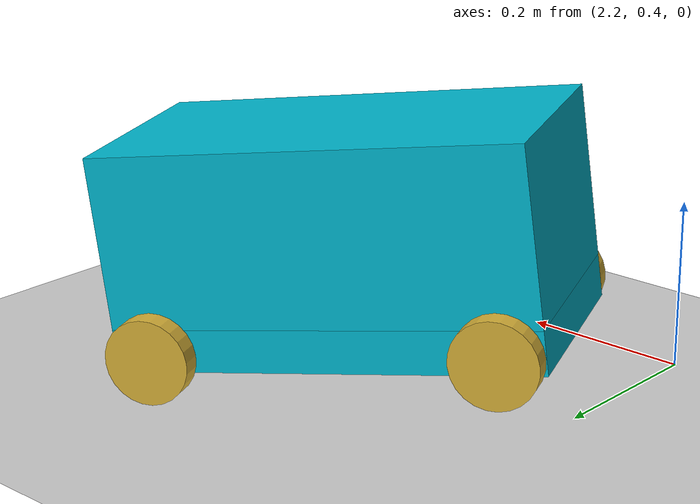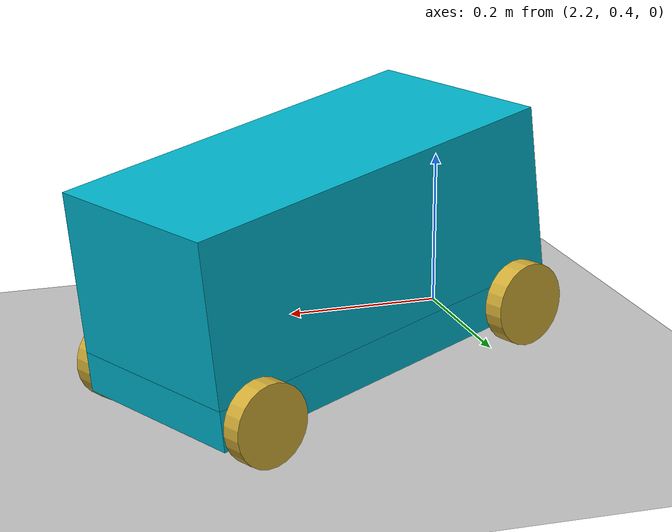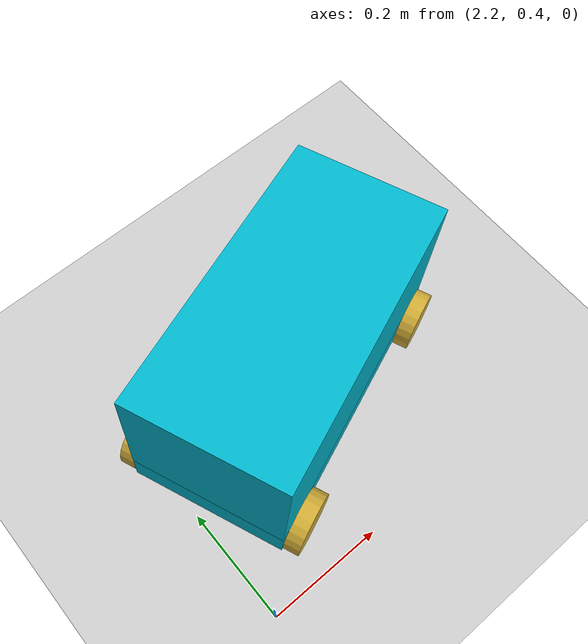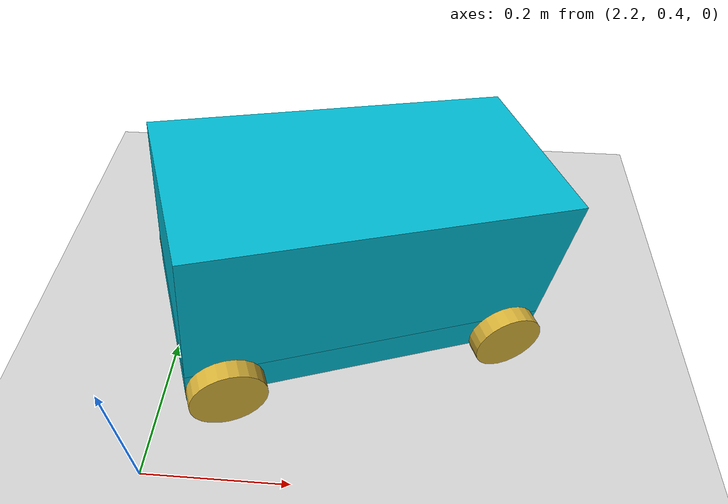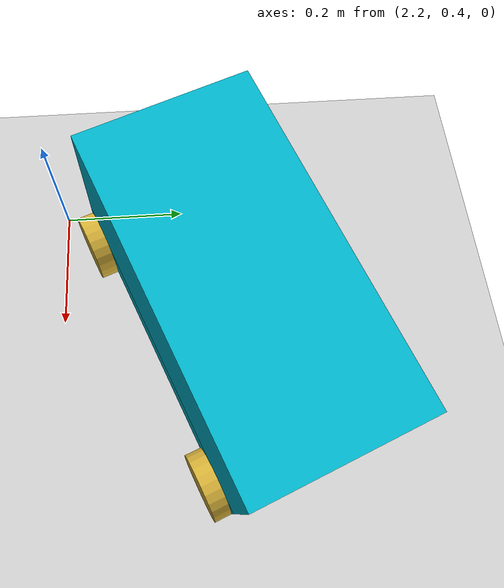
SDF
<sdf version="1.6">
 <world name="default">
  <model name="ground_plane">
   <static>1</static>
   <link name="link">
    <collision name="collision">
     <geometry><plane><normal>0 0 1</normal><size>100 100</size></plane></geometry>
     <surface><friction><ode><mu>100</mu><mu2>50</mu2></ode></friction></surface>
    </collision>
    <visual name="visual">
     <cast_shadows>0</cast_shadows>
     <geometry><plane><normal>0 0 1</normal><size>100 100</size></plane></geometry>
     <material>
      <script><uri>file://media/materials/scripts/gazebo.material</uri><name>Gazebo/Grey</name></script>
     </material>
    </visual>
   </link>
  </model>
  <model name="suv">
   <link name="link_0">
    <pose>0.2 0.139167 -0.029167 0 -0 0</pose>
    <inertial>
     <mass>1</mass>
     <inertia><ixx>0.145833</ixx><ixy>0</ixy><ixz>0</ixz><iyy>0.145833</iyy><iyz>0</iyz><izz>0.125</izz></inertia>
    </inertial>
    <visual name="visual">
     <pose>0 0 0.05 1.5707 -0 0</pose>
     <geometry><cylinder><radius>0.05</radius><length>0.025</length></cylinder></geometry>
     <material>
      <lighting>1</lighting>
      <script><uri>file://media/materials/scripts/gazebo.material</uri><name>Gazebo/Grey</name></script>
      <shader type="pixel"><normal_map>__default__</normal_map></shader>
      <ambient>0.831 0.686 0.216 1</ambient>
      <diffuse>0.831 0.686 0.216 1</diffuse>
      <specular>0.01 0.01 0.01 1</specular>
      <emissive>0 0 0 1</emissive>
     </material>
    </visual>
    <collision name="collision">
     <pose>0 0 0.05 1.5707 -0 0</pose>
     <geometry><cylinder><radius>0.05</radius><length>0.025</length></cylinder></geometry>
     <surface>
      <friction>
       <ode><mu>1</mu><mu2>1</mu2><fdir1>0 0 0</fdir1><slip1>0</slip1><slip2>0</slip2></ode>
       <torsional>
        <coefficient>1</coefficient>
        <patch_radius>0</patch_radius>
        <surface_radius>0</surface_radius>
        <use_patch_radius>1</use_patch_radius>
        <ode><slip>0</slip></ode>
       </torsional>
      </friction>
      <bounce><restitution_coefficient>0</restitution_coefficient><threshold>1e+06</threshold></bounce>
      <contact>
       <collide_without_contact>0</collide_without_contact>
       <collide_without_contact_bitmask>1</collide_without_contact_bitmask>
       <collide_bitmask>1</collide_bitmask>
       <ode>
        <soft_cfm>0</soft_cfm>
        <soft_erp>0.2</soft_erp>
        <kp>1e+13</kp>
        <kd>1</kd>
        <max_vel>0.01</max_vel>
        <min_depth>0</min_depth>
       </ode>
       <bullet>
        <split_impulse>1</split_impulse>
        <split_impulse_penetration_threshold>-0.01</split_impulse_penetration_threshold>
        <soft_cfm>0</soft_cfm>
        <soft_erp>0.2</soft_erp>
        <kp>1e+13</kp>
        <kd>1</kd>
       </bullet>
      </contact>
     </surface>
    </collision>
   </link>
   <link name="link_0_clone">
    <pose>-0.2 0.139167 -0.029167 0 -0 0</pose>
    <inertial>
     <mass>1</mass>
     <inertia><ixx>0.145833</ixx><ixy>0</ixy><ixz>0</ixz><iyy>0.145833</iyy><iyz>0</iyz><izz>0.125</izz></inertia>
    </inertial>
    <visual name="visual">
     <pose>0 0 0.05 1.5707 -0 0</pose>
     <geometry><cylinder><radius>0.05</radius><length>0.025</length></cylinder></geometry>
     <material>
      <lighting>1</lighting>
      <script><uri>file://media/materials/scripts/gazebo.material</uri><name>Gazebo/Grey</name></script>
      <shader type="pixel"><normal_map>__default__</normal_map></shader>
      <ambient>0.831 0.686 0.216 1</ambient>
      <diffuse>0.831 0.686 0.216 1</diffuse>
      <specular>0.01 0.01 0.01 1</specular>
      <emissive>0 0 0 1</emissive>
     </material>
    </visual>
    <collision name="collision">
     <pose>0 0 0.05 1.5707 -0 0</pose>
     <geometry><cylinder><radius>0.05</radius><length>0.025</length></cylinder></geometry>
     <surface>
      <friction>
       <ode><mu>1</mu><mu2>1</mu2><fdir1>0 0 0</fdir1><slip1>0</slip1><slip2>0</slip2></ode>
       <torsional>
        <coefficient>1</coefficient>
        <patch_radius>0</patch_radius>
        <surface_radius>0</surface_radius>
        <use_patch_radius>1</use_patch_radius>
        <ode><slip>0</slip></ode>
       </torsional>
      </friction>
      <bounce><restitution_coefficient>0</restitution_coefficient><threshold>1e+06</threshold></bounce>
      <contact>
       <collide_without_contact>0</collide_without_contact>
       <collide_without_contact_bitmask>1</collide_without_contact_bitmask>
       <collide_bitmask>1</collide_bitmask>
       <ode>
        <soft_cfm>0</soft_cfm>
        <soft_erp>0.2</soft_erp>
        <kp>1e+13</kp>
        <kd>1</kd>
        <max_vel>0.01</max_vel>
        <min_depth>0</min_depth>
       </ode>
       <bullet>
        <split_impulse>1</split_impulse>
        <split_impulse_penetration_threshold>-0.01</split_impulse_penetration_threshold>
        <soft_cfm>0</soft_cfm>
        <soft_erp>0.2</soft_erp>
        <kp>1e+13</kp>
        <kd>1</kd>
       </bullet>
      </contact>
     </surface>
    </collision>
   </link>
   <link name="link_0_clone_0">
    <pose>0.2 -0.138333 -0.029167 0 -0 0</pose>
    <inertial>
     <mass>1</mass>
     <inertia><ixx>0.145833</ixx><ixy>0</ixy><ixz>0</ixz><iyy>0.145833</iyy><iyz>0</iyz><izz>0.125</izz></inertia>
    </inertial>
    <visual name="visual">
     <pose>0 0 0.05 1.5707 -0 0</pose>
     <geometry><cylinder><radius>0.05</radius><length>0.025</length></cylinder></geometry>
     <material>
      <lighting>1</lighting>
      <script><uri>file://media/materials/scripts/gazebo.material</uri><name>Gazebo/Grey</name></script>
      <shader type="pixel"><normal_map>__default__</normal_map></shader>
      <ambient>0.831 0.686 0.216 1</ambient>
      <diffuse>0.831 0.686 0.216 1</diffuse>
      <specular>0.01 0.01 0.01 1</specular>
      <emissive>0 0 0 1</emissive>
     </material>
    </visual>
    <collision name="collision">
     <pose>0 0 0.05 1.5707 -0 0</pose>
     <geometry><cylinder><radius>0.05</radius><length>0.025</length></cylinder></geometry>
     <surface>
      <friction>
       <ode><mu>1</mu><mu2>1</mu2><fdir1>0 0 0</fdir1><slip1>0</slip1><slip2>0</slip2></ode>
       <torsional>
        <coefficient>1</coefficient>
        <patch_radius>0</patch_radius>
        <surface_radius>0</surface_radius>
        <use_patch_radius>1</use_patch_radius>
        <ode><slip>0</slip></ode>
       </torsional>
      </friction>
      <bounce><restitution_coefficient>0</restitution_coefficient><threshold>1e+06</threshold></bounce>
      <contact>
       <collide_without_contact>0</collide_without_contact>
       <collide_without_contact_bitmask>1</collide_without_contact_bitmask>
       <collide_bitmask>1</collide_bitmask>
       <ode>
        <soft_cfm>0</soft_cfm>
        <soft_erp>0.2</soft_erp>
        <kp>1e+13</kp>
        <kd>1</kd>
        <max_vel>0.01</max_vel>
        <min_depth>0</min_depth>
       </ode>
       <bullet>
        <split_impulse>1</split_impulse>
        <split_impulse_penetration_threshold>-0.01</split_impulse_penetration_threshold>
        <soft_cfm>0</soft_cfm>
        <soft_erp>0.2</soft_erp>
        <kp>1e+13</kp>
        <kd>1</kd>
       </bullet>
      </contact>
     </surface>
    </collision>
   </link>
   <link name="link_0_clone_1">
    <pose>-0.2 -0.138333 -0.029167 0 -0 0</pose>
    <inertial>
     <mass>1</mass>
     <inertia><ixx>0.145833</ixx><ixy>0</ixy><ixz>0</ixz><iyy>0.145833</iyy><iyz>0</iyz><izz>0.125</izz></inertia>
    </inertial>
    <visual name="visual">
     <pose>0 0 0.05 1.5707 -0 0</pose>
     <geometry><cylinder><radius>0.05</radius><length>0.025</length></cylinder></geometry>
     <material>
      <lighting>1</lighting>
      <script><uri>file://media/materials/scripts/gazebo.material</uri><name>Gazebo/Grey</name></script>
      <shader type="pixel"><normal_map>__default__</normal_map></shader>
      <ambient>0.831 0.686 0.216 1</ambient>
      <diffuse>0.831 0.686 0.216 1</diffuse>
      <specular>0.01 0.01 0.01 1</specular>
      <emissive>0 0 0 1</emissive>
     </material>
    </visual>
    <collision name="collision">
     <pose>0 0 0.05 1.5707 -0 0</pose>
     <geometry><cylinder><radius>0.05</radius><length>0.025</length></cylinder></geometry>
     <surface>
      <friction>
       <ode><mu>1</mu><mu2>1</mu2><fdir1>0 0 0</fdir1><slip1>0</slip1><slip2>0</slip2></ode>
       <torsional>
        <coefficient>1</coefficient>
        <patch_radius>0</patch_radius>
        <surface_radius>0</surface_radius>
        <use_patch_radius>1</use_patch_radius>
        <ode><slip>0</slip></ode>
       </torsional>
      </friction>
      <bounce><restitution_coefficient>0</restitution_coefficient><threshold>1e+06</threshold></bounce>
      <contact>
       <collide_without_contact>0</collide_without_contact>
       <collide_without_contact_bitmask>1</collide_without_contact_bitmask>
       <collide_bitmask>1</collide_bitmask>
       <ode>
        <soft_cfm>0</soft_cfm>
        <soft_erp>0.2</soft_erp>
        <kp>1e+13</kp>
        <kd>1</kd>
        <max_vel>0.01</max_vel>
        <min_depth>0</min_depth>
       </ode>
       <bullet>
        <split_impulse>1</split_impulse>
        <split_impulse_penetration_threshold>-0.01</split_impulse_penetration_threshold>
        <soft_cfm>0</soft_cfm>
        <soft_erp>0.2</soft_erp>
        <kp>1e+13</kp>
        <kd>1</kd>
       </bullet>
      </contact>
     </surface>
    </collision>
   </link>
   <link name="link_2">
    <pose>0 -0 0.025 0 -0 0</pose>
    <inertial>
     <mass>1</mass>
     <inertia>
      <ixx>0.166667</ixx>
      <ixy>0</ixy>
      <ixz>0</ixz>
      <iyy>0.166667</iyy>
      <iyz>0</iyz>
      <izz>0.166667</izz>
     </inertia>
    </inertial>
    <visual name="visual">
     <geometry><box><size>0.5 0.25 0.05</size></box></geometry>
     <material>
      <lighting>1</lighting>
      <script><uri>file://media/materials/scripts/gazebo.material</uri><name>Gazebo/Grey</name></script>
      <shader type="pixel"><normal_map>__default__</normal_map></shader>
      <ambient>0 0.72 0.81 1</ambient>
      <diffuse>0 0.72 0.81 1</diffuse>
      <specular>0.01 0.01 0.01 1</specular>
      <emissive>0 0 0 1</emissive>
     </material>
    </visual>
    <collision name="collision">
     <geometry><box><size>0.5 0.25 0.05</size></box></geometry>
     <surface>
      <friction>
       <ode><mu>1</mu><mu2>1</mu2><fdir1>0 0 0</fdir1><slip1>0</slip1><slip2>0</slip2></ode>
       <torsional>
        <coefficient>1</coefficient>
        <patch_radius>0</patch_radius>
        <surface_radius>0</surface_radius>
        <use_patch_radius>1</use_patch_radius>
        <ode><slip>0</slip></ode>
       </torsional>
      </friction>
      <bounce><restitution_coefficient>0</restitution_coefficient><threshold>1e+06</threshold></bounce>
      <contact>
       <collide_without_contact>0</collide_without_contact>
       <collide_without_contact_bitmask>1</collide_without_contact_bitmask>
       <collide_bitmask>1</collide_bitmask>
       <ode>
        <soft_cfm>0</soft_cfm>
        <soft_erp>0.2</soft_erp>
        <kp>1e+13</kp>
        <kd>1</kd>
        <max_vel>0.01</max_vel>
        <min_depth>0</min_depth>
       </ode>
       <bullet>
        <split_impulse>1</split_impulse>
        <split_impulse_penetration_threshold>-0.01</split_impulse_penetration_threshold>
        <soft_cfm>0</soft_cfm>
        <soft_erp>0.2</soft_erp>
        <kp>1e+13</kp>
        <kd>1</kd>
       </bullet>
      </contact>
     </surface>
    </collision>
   </link>
   <link name="link_7">
    <pose>0 -0 0.15 0 -0 0</pose>
    <inertial>
     <mass>1</mass>
     <inertia>
      <ixx>0.166667</ixx>
      <ixy>0</ixy>
      <ixz>0</ixz>
      <iyy>0.166667</iyy>
      <iyz>0</iyz>
      <izz>0.166667</izz>
     </inertia>
    </inertial>
    <visual name="visual">
     <geometry><box><size>0.5 0.25 0.2</size></box></geometry>
     <material>
      <lighting>1</lighting>
      <script><uri>file://media/materials/scripts/gazebo.material</uri><name>Gazebo/Grey</name></script>
      <shader type="pixel"><normal_map>__default__</normal_map></shader>
      <ambient>0 0.72 0.81 1</ambient>
      <diffuse>0 0.72 0.81 1</diffuse>
      <specular>0.01 0.01 0.01 1</specular>
      <emissive>0 0 0 1</emissive>
     </material>
    </visual>
    <collision name="collision">
     <geometry><box><size>0.5 0.25 0.2</size></box></geometry>
     <surface>
      <friction>
       <ode><mu>1</mu><mu2>1</mu2><fdir1>0 0 0</fdir1><slip1>0</slip1><slip2>0</slip2></ode>
       <torsional>
        <coefficient>1</coefficient>
        <patch_radius>0</patch_radius>
        <surface_radius>0</surface_radius>
        <use_patch_radius>1</use_patch_radius>
        <ode><slip>0</slip></ode>
       </torsional>
      </friction>
      <bounce><restitution_coefficient>0</restitution_coefficient><threshold>1e+06</threshold></bounce>
      <contact>
       <collide_without_contact>0</collide_without_contact>
       <collide_without_contact_bitmask>1</collide_without_contact_bitmask>
       <collide_bitmask>1</collide_bitmask>
       <ode>
        <soft_cfm>0</soft_cfm>
        <soft_erp>0.2</soft_erp>
        <kp>1e+13</kp>
        <kd>1</kd>
        <max_vel>0.01</max_vel>
        <min_depth>0</min_depth>
       </ode>
       <bullet>
        <split_impulse>1</split_impulse>
        <split_impulse_penetration_threshold>-0.01</split_impulse_penetration_threshold>
        <soft_cfm>0</soft_cfm>
        <soft_erp>0.2</soft_erp>
        <kp>1e+13</kp>
        <kd>1</kd>
       </bullet>
      </contact>
     </surface>
    </collision>
   </link>
   <joint name="link_2_JOINT_0" type="revolute">
    <parent>link_2</parent>
    <child>link_0</child>
    <pose>0 0 0.05 0 -0 0</pose>
    <axis>
     <xyz>0 1 0</xyz>
     <use_parent_model_frame>0</use_parent_model_frame>
     <limit>
      <lower>-1.79769e+308</lower>
      <upper>1.79769e+308</upper>
      <effort>-1</effort>
      <velocity>-1</velocity>
     </limit>
     <dynamics>
      <spring_reference>0</spring_reference>
      <spring_stiffness>0</spring_stiffness>
      <damping>0</damping>
      <friction>0</friction>
     </dynamics>
    </axis>
    <physics>
     <ode><limit><cfm>0</cfm><erp>0.2</erp></limit><suspension><cfm>0</cfm><erp>0.2</erp></suspension></ode>
    </physics>
   </joint>
   <joint name="link_2_JOINT_1" type="revolute">
    <parent>link_2</parent>
    <child>link_0_clone</child>
    <pose>0 0 0.05 0 -0 0</pose>
    <axis>
     <xyz>0 1 0</xyz>
     <use_parent_model_frame>0</use_parent_model_frame>
     <limit>
      <lower>-1.79769e+308</lower>
      <upper>1.79769e+308</upper>
      <effort>-1</effort>
      <velocity>-1</velocity>
     </limit>
     <dynamics>
      <spring_reference>0</spring_reference>
      <spring_stiffness>0</spring_stiffness>
      <damping>0</damping>
      <friction>0</friction>
     </dynamics>
    </axis>
    <physics>
     <ode><limit><cfm>0</cfm><erp>0.2</erp></limit><suspension><cfm>0</cfm><erp>0.2</erp></suspension></ode>
    </physics>
   </joint>
   <joint name="link_2_JOINT_2" type="revolute">
    <parent>link_2</parent>
    <child>link_0_clone_0</child>
    <pose>0 0 0.05 0 -0 0</pose>
    <axis>
     <xyz>0 1 0</xyz>
     <use_parent_model_frame>0</use_parent_model_frame>
     <limit>
      <lower>-1.79769e+308</lower>
      <upper>1.79769e+308</upper>
      <effort>-1</effort>
      <velocity>-1</velocity>
     </limit>
     <dynamics>
      <spring_reference>0</spring_reference>
      <spring_stiffness>0</spring_stiffness>
      <damping>0</damping>
      <friction>0</friction>
     </dynamics>
    </axis>
    <physics>
     <ode><limit><cfm>0</cfm><erp>0.2</erp></limit><suspension><cfm>0</cfm><erp>0.2</erp></suspension></ode>
    </physics>
   </joint>
   <joint name="link_2_JOINT_3" type="revolute">
    <parent>link_2</parent>
    <child>link_0_clone_1</child>
    <pose>0 0 0.05 0 -0 0</pose>
    <axis>
     <xyz>0 1 0</xyz>
     <use_parent_model_frame>0</use_parent_model_frame>
     <limit>
      <lower>-1.79769e+308</lower>
      <upper>1.79769e+308</upper>
      <effort>-1</effort>
      <velocity>-1</velocity>
     </limit>
     <dynamics>
      <spring_reference>0</spring_reference>
      <spring_stiffness>0</spring_stiffness>
      <damping>0</damping>
      <friction>0</friction>
     </dynamics>
    </axis>
    <physics>
     <ode><limit><cfm>0</cfm><erp>0.2</erp></limit><suspension><cfm>0</cfm><erp>0.2</erp></suspension></ode>
    </physics>
   </joint>
   <joint name="link_2_JOINT_4" type="fixed">
    <parent>link_2</parent>
    <child>link_7</child>
    <physics>
     <ode><limit><cfm>0</cfm><erp>0.2</erp></limit><suspension><cfm>0</cfm><erp>0.2</erp></suspension></ode>
    </physics>
   </joint>
   <static>0</static>
   <pose>2.44601 0.672233 0.056004 -3e-06 0.133644 0.387787</pose>
  </model>
 </world>
</sdf>
